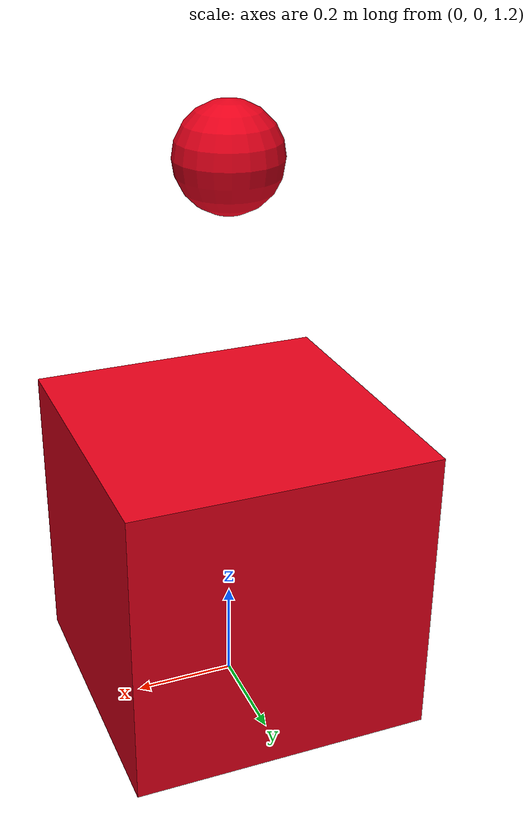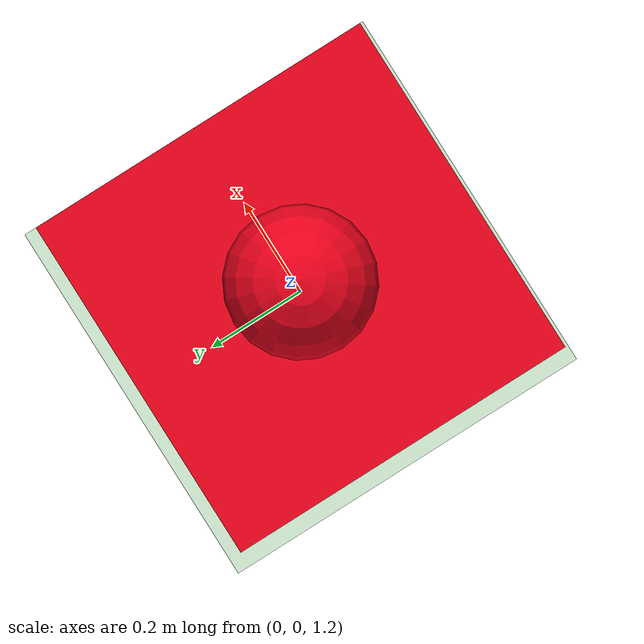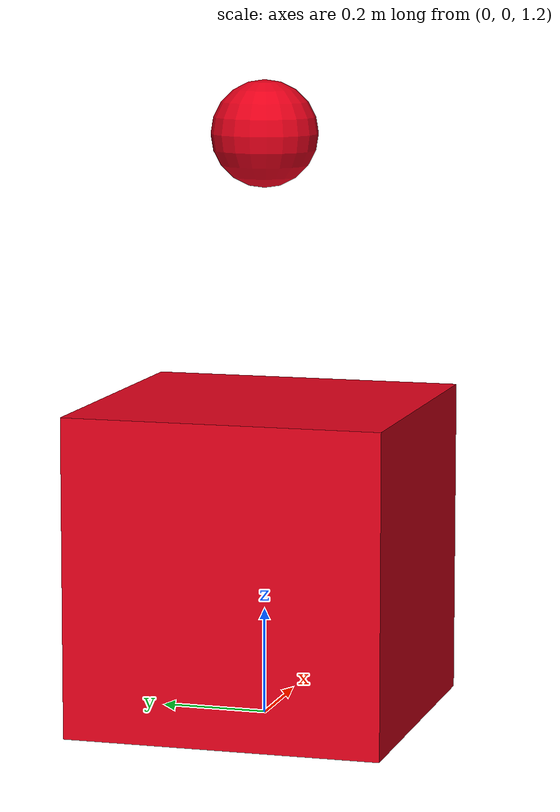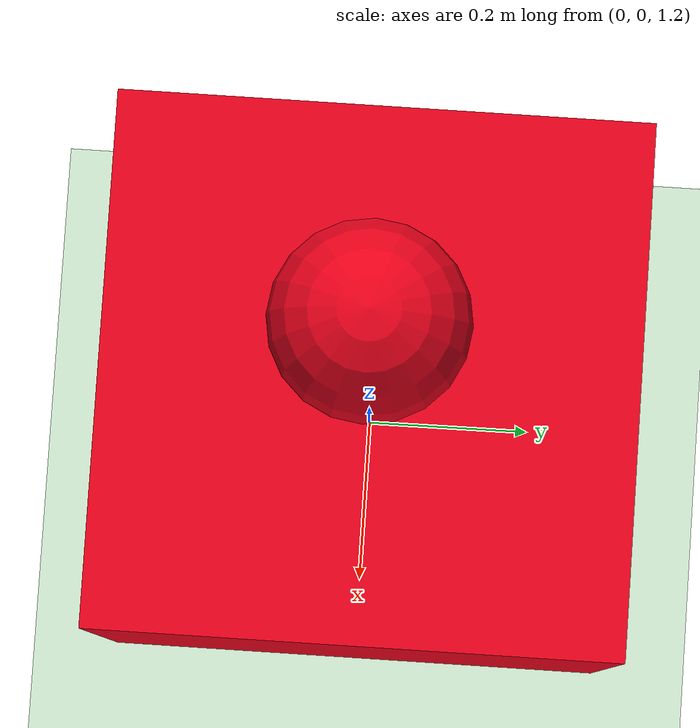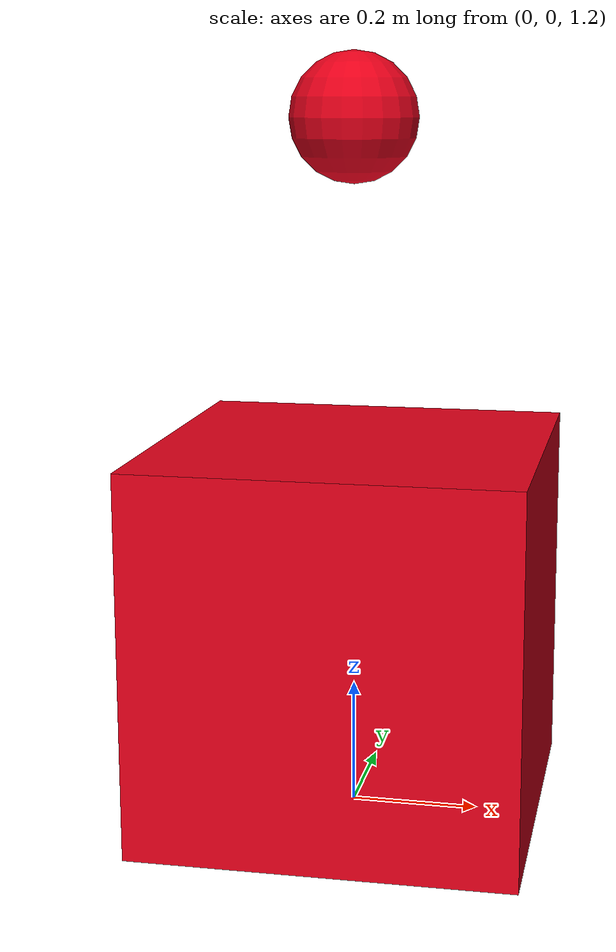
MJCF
<mujoco model="ball_model">
    <compiler angle ="degree"/>

    <default>
        <joint damping= "5"/>
        <geom conaffinity="1" condim = "3"/>
    </default>

    <!-- 텍스처와 재질 정의 -->
    <asset>
        <texture builtin="gradient" height="100" rgb1="1 1 1" rgb2="0 0 0" type="skybox" width="100"/>
        <texture builtin="flat" height="1278" mark="cross" markrgb="1 1 1" name="texgeom" random="0.01" rgb1="0.8 0.6 0.4" rgb2="0.8 0.6 0.4" type="cube" width="127"/>
        <texture builtin="checker" height="100" name="texplane" rgb1="0 0 0" rgb2="0.8 0.8 0.8" type="2d" width="100"/>
        <material name="MatPlane" reflectance="0.5" shininess="1" specular="1" texrepeat="60 60" texture="texplane"/>
        <material name="geom" texture="texgeom" texuniform="true"/>
    </asset>
    <option gravity="0 0 -9.8"/>

    <worldbody>
        <!-- 조명 pos 위치 dir 방향 diffuse 확산광(빛이 고르게 퍼지도록 ) specular 반사광 ambient 주변(주변이 밝아지도록)-->
        <light cutoff="100" diffuse="1 1 1" dir="-0 0 -1.3" directional="true" exponent="1" pos="0 0 1.3" specular=".1 .1 .1"/>
        <geom conaffinity="1" condim="3" material="MatPlane" name="floor" pos="0 0 0" rgba="0.8 0.9 0.8 1" size="40 40 40" type="plane"/>
        <!-- if you want to move the box, then the box should need joint-->
        <body name = "box2" pos="0 0 2.3" euler = "0 0 0">
            <joint name = "target"  type="free" />
            <geom type="sphere" size=".1 .1 .1" rgba = "0.9 0 0.1 1"/>
            <inertial pos="0 0 0" mass="1" diaginertia="1 1 1"/>
        </body>

        <body name ="asdf" pos="0 0 1.5" euler = "0 0 0">
            <joint name = "joint1"  type="hinge" axis="1 0 0" range="-40 40" limited="true"/>
            <joint name = "joint2"  type="hinge" axis="0 1 0" range="-40 40" limited="true"/>
            <geom name = "box1" type="box" size=".3 .3 .3" rgba = "0.9 0 0.1 1"/>
            <inertial pos="0 0 0" mass="10" diaginertia="0.01 0.01 0.01"/>
        </body>

        <!-- but only the header have the free joint then byproducts move along the header-->

    </worldbody>

    <actuator>
        <position joint="joint1" kp="50" gear="1" ctrllimited="true" ctrlrange="-40 40"/>
        <position joint="joint2" kp="50" gear="1" ctrllimited="true" ctrlrange="-40 40"/>

    </actuator>
</mujoco>
